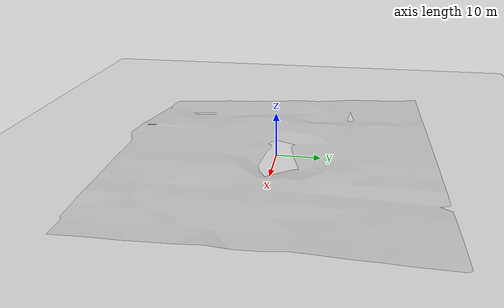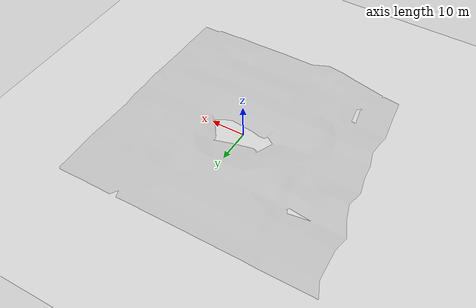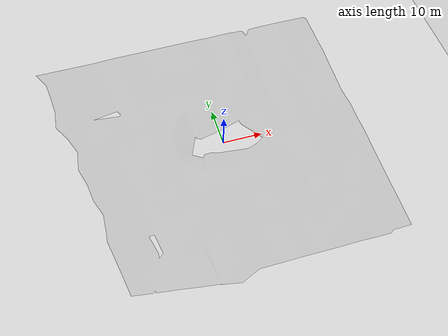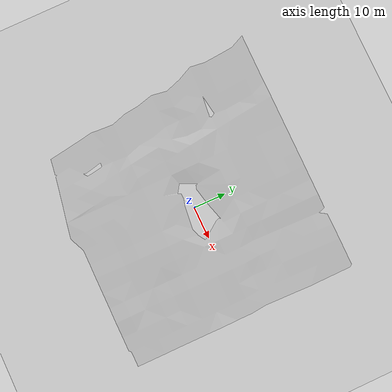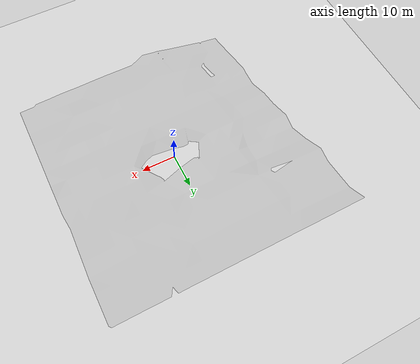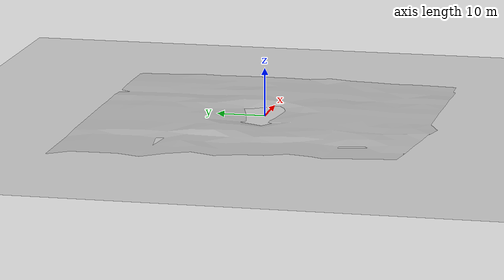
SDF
<?xml version="1.0" ?>
<sdf version="1.4">
  <world name="default">
    <include>
      <uri>model://ground_plane</uri>
    </include>
    <include>
      <uri>model://sun</uri>
    </include>
    <plugin name="ros_link_attacher_plugin" filename="libgazebo_ros_link_attacher.so"/>

    <!-- Only one ROS interface plugin is required per world, as any other plugin can connect a Gazebo
         topic to a ROS topic (or vise versa). -->
    <plugin name="ros_interface_plugin" filename="librotors_gazebo_ros_interface_plugin.so"/>

    <spherical_coordinates>
      <surface_model>EARTH_WGS84</surface_model>
      <latitude_deg>47.3667</latitude_deg>
      <longitude_deg>8.5500</longitude_deg>
      <elevation>500.0</elevation>
      <heading_deg>0</heading_deg>
    </spherical_coordinates>

    <physics type='ode'>
      <ode>
        <solver>
          <type>quick</type>
          <iters>300</iters>
          <sor>1.3</sor>
        <use_dynamic_moi_rescaling>0</use_dynamic_moi_rescaling>
        </solver>
        <constraints>
          <cfm>0</cfm>
          <erp>0.2</erp>
          <contact_max_correcting_vel>100</contact_max_correcting_vel>
          <contact_surface_layer>0.001</contact_surface_layer>
        </constraints>
      </ode>
      <max_step_size>0.004</max_step_size>
      <real_time_factor>1</real_time_factor>
      <real_time_update_rate>250</real_time_update_rate>
      <gravity>0 0 -9.8</gravity>
      <magnetic_field>6.0e-6 2.3e-5 -4.2e-5</magnetic_field>
    </physics>

    <model name='uneven'>
      <pose frame=''>0 0 -0.1 0 0 0</pose>
      <static>1</static>
      <link name='uneven'>
        <visual name='uneven_visual'>
          <geometry>
            <mesh>
              <uri>model://uneven/meshes/uneven2.dae</uri>
            </mesh>
          </geometry>
        </visual>
        <collision name="uneven_collision">
            <geometry>
                <mesh>
                    <uri>model://uneven/meshes/uneven2.dae</uri>
                </mesh>
            </geometry>
        </collision>
        <self_collide>0</self_collide>
        <enable_wind>0</enable_wind>
        <kinematic>0</kinematic>
      </link>
    </model>

  </world>
</sdf>
